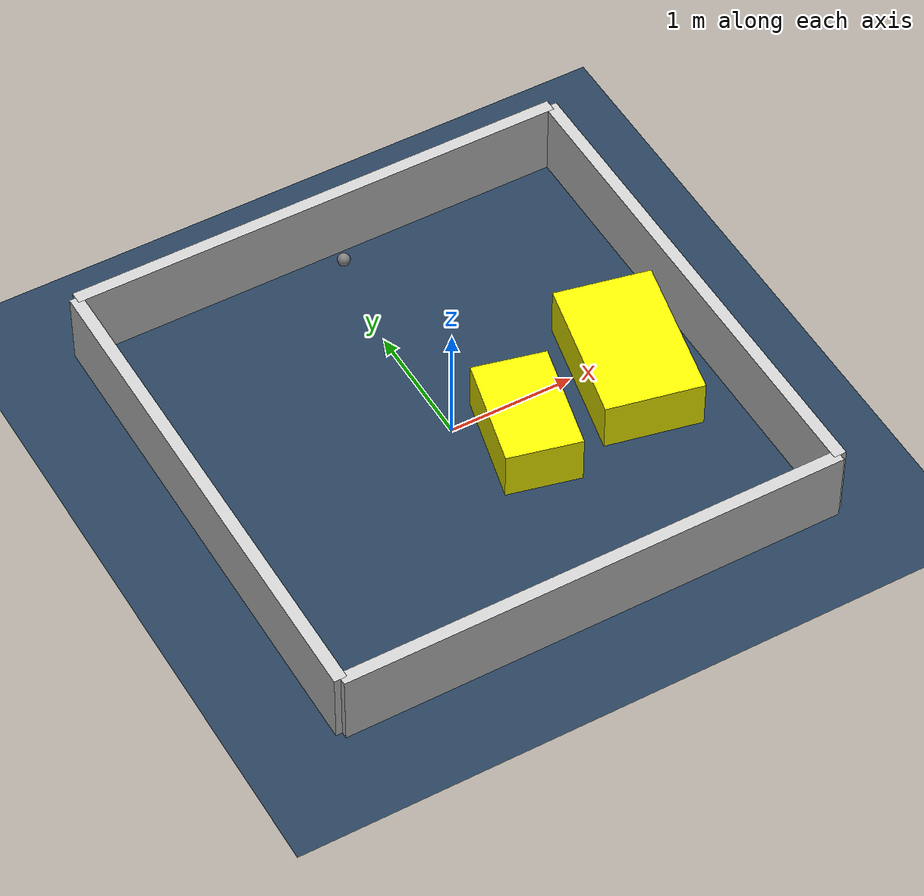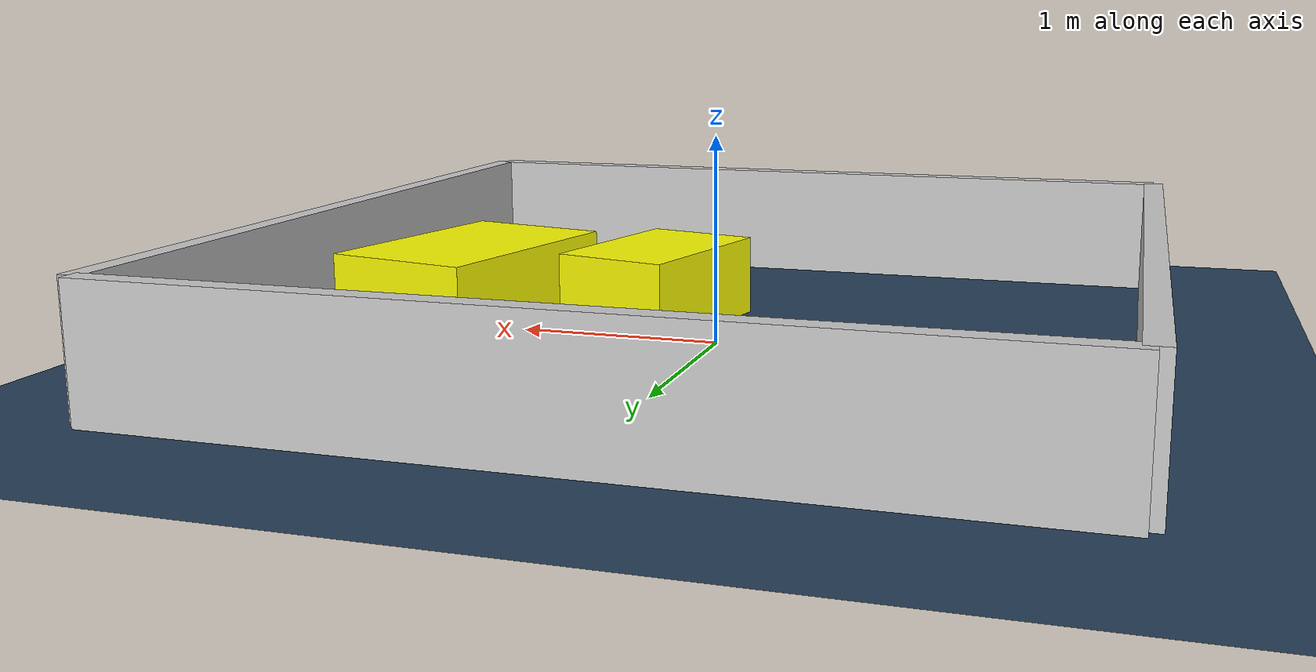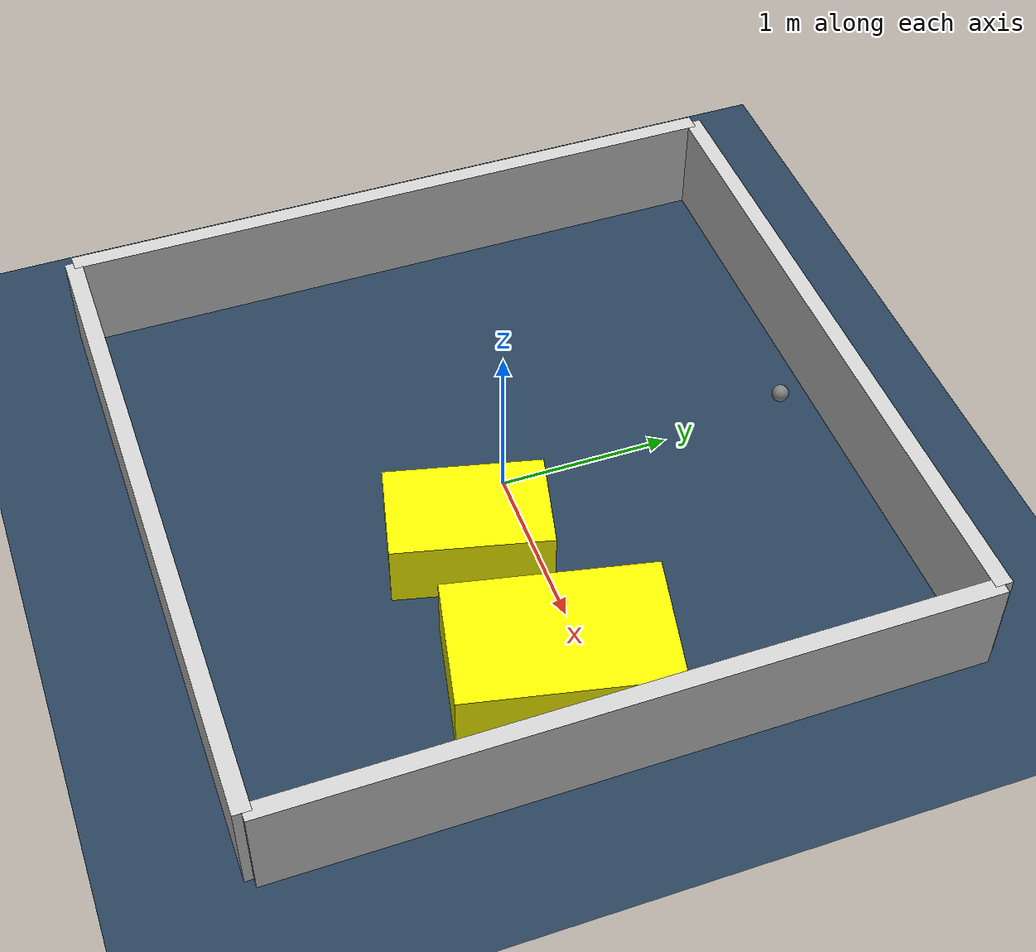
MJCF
<?xml version="1.0" ?>
<mujoco model="generated_environment">
  <option timestep="0.01" integrator="RK4" cone="elliptic"/>
  <default>
    <geom density="1"/>
  </default>
  <asset>
    <texture builtin="gradient" height="3072" rgb1="0.3 0.5 0.7" rgb2="0 0 0" type="skybox" width="512"/>
    <texture builtin="checker" height="300" mark="edge" markrgb="0.8 0.8 0.8" name="groundplane" rgb1="0.2 0.3 0.4" rgb2="0.1 0.2 0.3" type="2d" width="300"/>
    <material name="groundplane" reflectance="0.2" texrepeat="5 5" texture="groundplane" texuniform="true"/>
    <material name="robot" rgba="0.0 1.0 0.0 1"/>
  </asset>
  <worldbody>
    <light dir="0 0 -1" directional="true" pos="0 0 1.5"/>
    <geom condim="4" friction="1.0 0.005 0.001" material="groundplane" name="floor" size="0 0 0.05" type="plane"/>
    <body name="walls">
      <geom name="wall_1" condim="4" pos="-2.0 0.0 0.3" rgba="0.800000011920929 0.800000011920929 0.800000011920929 1.0" size="0.05 2.0 0.3" type="box"/>
      <geom name="wall_2" condim="4" pos="2.0 0.0 0.3" rgba="0.800000011920929 0.800000011920929 0.800000011920929 1.0" size="0.05 2.0 0.3" type="box"/>
      <geom name="wall_3" condim="4" pos="0.0 -2.0 0.3" rgba="0.800000011920929 0.800000011920929 0.800000011920929 1.0" size="2.0 0.05 0.3" type="box"/>
      <geom name="wall_4" condim="4" pos="0.0 2.0 0.3" rgba="0.800000011920929 0.800000011920929 0.800000011920929 1.0" size="2.0 0.05 0.3" type="box"/>
    </body>
    <body name="robot">
      <joint name="joint_x" type="slide" pos="0 0 0" axis="1 0 0"/>
      <joint name="joint_y" type="slide" pos="0 0 0" axis="0 1 0"/>
      <geom name="robot" type="sphere" pos="0.04794907113073532 1.7043555251179305 0.2" size="0.05" mass="5." friction="1.0 0.005 0.0001" condim="4"/>
      <site name="sensor_ball"/>
    </body>
    <body name="obstacle_1_movable">
      <geom name="obstacle_1_movable" condim="4" pos="1.3757889871148823 -0.17629008149594272 0.2" euler="0 0 347.9039258956672" friction="1.0 0.005 0.001" rgba="1 1 0 1" size="0.38334649247404917 0.5945940471024171 0.2" type="box" mass="0.1"/>
      <joint type="free"/>
    </body>
    <body name="obstacle_2_movable">
      <geom name="obstacle_2_movable" condim="4" pos="0.4161270168243947 -0.3534739108157934 0.2" euler="0 0 166.38585662120602" friction="1.0 0.005 0.001" rgba="1 1 0 1" size="0.2923280415960031 0.44915485978341224 0.2" type="box" mass="0.1"/>
      <joint type="free"/>
    </body>
  </worldbody>
  <actuator>
    <motor name="actuator_x" joint="joint_x" gear="1" ctrlrange="-1 1"/>
    <motor name="actuator_y" joint="joint_y" gear="1" ctrlrange="-1 1"/>
  </actuator>
</mujoco>
